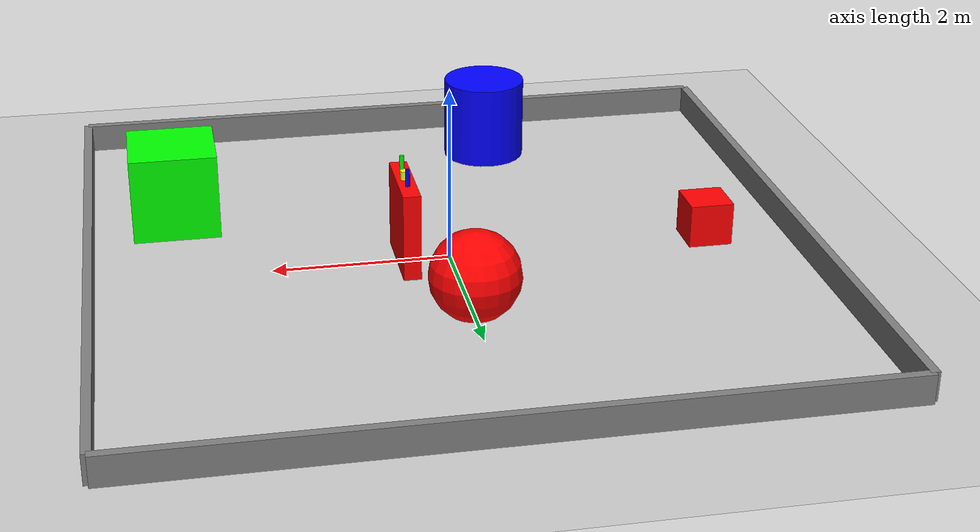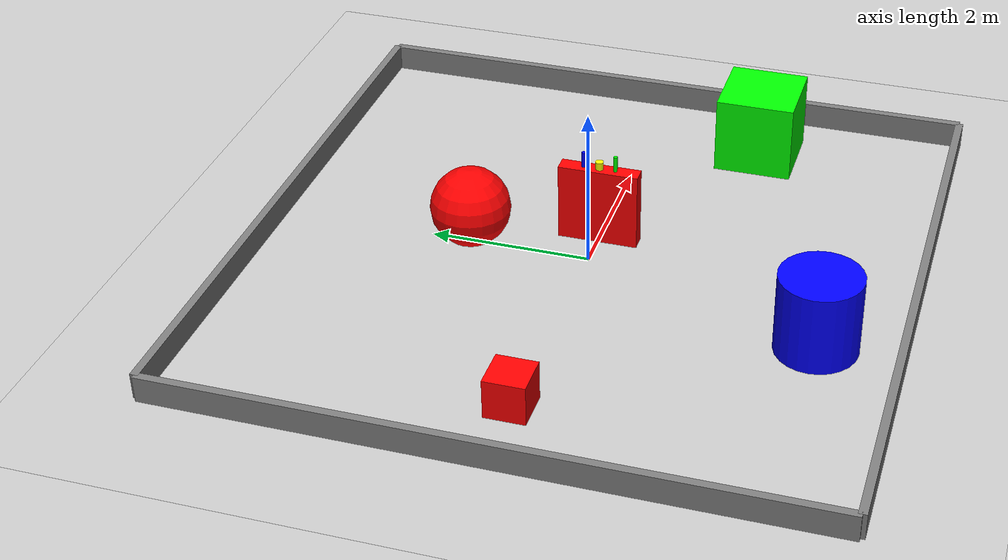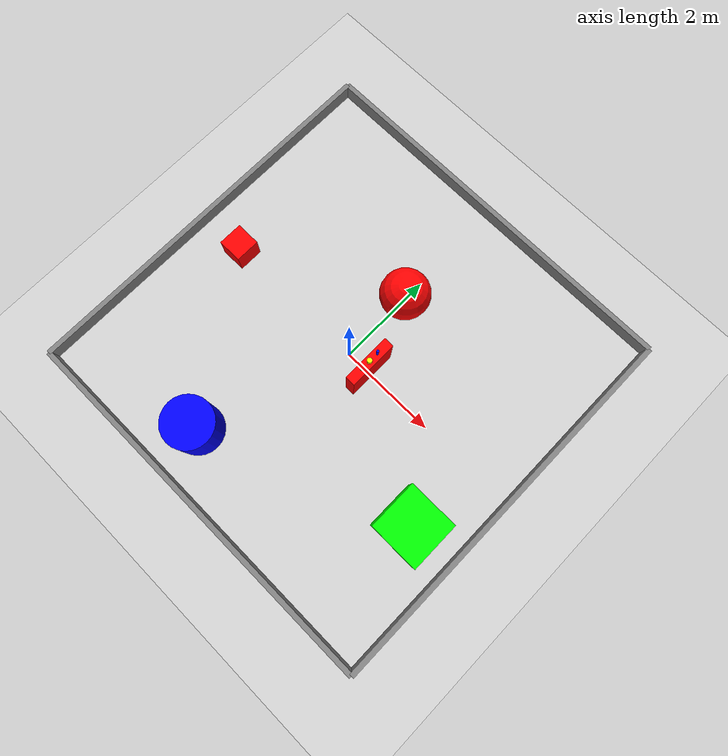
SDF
<?xml version="1.0" ?>
<sdf version="1.8">
  <world name="humanoid_workspace">
    <!-- Physics settings -->
    <physics name="1ms" type="ignored">
      <max_step_size>0.002</max_step_size>
      <real_time_factor>1.0</real_time_factor>
    </physics>

    <plugin
      filename="gz-sim-physics-system"
      name="gz::sim::systems::Physics">
    </plugin>
    <plugin
      filename="gz-sim-user-commands-system"
      name="gz::sim::systems::UserCommands">
    </plugin>
    <plugin
      filename="gz-sim-scene-broadcaster-system"
      name="gz::sim::systems::SceneBroadcaster">
    </plugin>
    <plugin
      filename="gz-sim-sensors-system"
      name="gz::sim::systems::Sensors">
      <render_engine>ogre2</render_engine>
    </plugin>

    <!-- Lighting -->
    <light type="directional" name="sun">
      <cast_shadows>true</cast_shadows>
      <pose>0 0 10 0 0 0</pose>
      <diffuse>0.8 0.8 0.8 1</diffuse>
      <specular>0.2 0.2 0.2 1</specular>
      <attenuation>
        <range>1000</range>
        <constant>0.9</constant>
        <linear>0.01</linear>
        <quadratic>0.001</quadratic>
      </attenuation>
      <direction>-0.5 0.1 -0.9</direction>
    </light>

    <!-- Ground plane -->
    <model name="ground_plane">
      <static>true</static>
      <link name="link">
        <collision name="collision">
          <geometry>
            <plane>
              <normal>0 0 1</normal>
              <size>100 100</size>
            </plane>
          </geometry>
        </collision>
        <visual name="visual">
          <geometry>
            <plane>
              <normal>0 0 1</normal>
              <size>100 100</size>
            </plane>
          </geometry>
          <material>
            <ambient>0.8 0.8 0.8 1</ambient>
            <diffuse>0.8 0.8 0.8 1</diffuse>
            <specular>0.8 0.8 0.8 1</specular>
          </material>
        </visual>
      </link>
    </model>

    <!-- A red ball -->
    <model name="sphere">
      <pose>0 1.5 0.5 0 0 0</pose>
      <link name="link">
        <collision name="collision">
          <geometry>
            <sphere>
              <radius>0.5</radius>
            </sphere>
          </geometry>
        </collision>
        <visual name="visual">
          <geometry>
            <sphere>
              <radius>0.5</radius>
            </sphere>
          </geometry>
          <material>
            <ambient>1 0 0 1</ambient>
            <diffuse>1 0 0 1</diffuse>
            <specular>0.5 0.5 0.5 1</specular>
          </material>
        </visual>
      </link>
    </model>

    <!-- A green cube -->
    <model name="cube_green">
      <pose>3.0 -1.5 0.5 0 0 0</pose>
      <link name="link">
        <collision name="collision">
          <geometry>
            <box>
              <size>1 1 1</size>
            </box>
          </geometry>
        </collision>
        <visual name="visual">
          <geometry>
            <box>
              <size>1 1 1</size>
            </box>
          </geometry>
          <material>
            <ambient>0 1 0 1</ambient>
            <diffuse>0 1 0 1</diffuse>
            <specular>0.5 0.5 0.5 1</specular>
          </material>
        </visual>
      </link>
    </model>

    <!-- A blue cylinder -->
    <model name="cylinder">
      <pose>-1.0 -3.0 0.5 0 0 0</pose>
      <link name="link">
        <collision name="collision">
          <geometry>
            <cylinder>
              <radius>0.5</radius>
              <length>1.0</length>
            </cylinder>
          </geometry>
        </collision>
        <visual name="visual">
          <geometry>
            <cylinder>
              <radius>0.5</radius>
              <length>1.0</length>
            </cylinder>
          </geometry>
          <material>
            <ambient>0 0 1 1</ambient>
            <diffuse>0 0 1 1</diffuse>
            <specular>0.5 0.5 0.5 1</specular>
          </material>
        </visual>
      </link>
    </model>

    <!-- A red small cube -->
    <model name="cube_small_red">
      <pose>-3.0 0.0 0.25 0 0 0</pose>
      <link name="link">
        <collision name="collision">
          <geometry>
            <box>
              <size>0.5 0.5 0.5</size>
            </box>
          </geometry>
        </collision>
        <visual name="visual">
          <geometry>
            <box>
              <size>0.5 0.5 0.5</size>
            </box>
          </geometry>
          <material>
            <ambient>1 0 0 1</ambient>
            <diffuse>1 0 0 1</diffuse>
            <specular>0.5 0.5 0.5 1</specular>
          </material>
        </visual>
      </link>
    </model>

    <!-- Walls -->
    <model name='grey_wall_0'>
      <static>true</static>
      <pose>0 4 0 0 0 0</pose>
      <link name='link'>
        <pose>0 0 0.165 0 0 0</pose>
        <collision name='collision'>
          <geometry>
            <box>
              <size>8 0.1 0.33</size>
            </box>
          </geometry>
        </collision>
        <visual name='visual'>
          <geometry>
            <box>
              <size>8 0.1 0.33</size>
            </box>
          </geometry>
          <material>
            <ambient>0.5 0.5 0.5 1</ambient>
            <diffuse>0.5 0.5 0.5 1</diffuse>
            <specular>0.1 0.1 0.1 1</specular>
          </material>
        </visual>
      </link>
    </model>

    <model name='grey_wall_1'>
      <static>true</static>
      <pose>0 -4 0 0 0 0</pose>
      <link name='link'>
        <pose>0 0 0.165 0 0 0</pose>
        <collision name='collision'>
          <geometry>
            <box>
              <size>8 0.1 0.33</size>
            </box>
          </geometry>
        </collision>
        <visual name='visual'>
          <geometry>
            <box>
              <size>8 0.1 0.33</size>
            </box>
          </geometry>
          <material>
            <ambient>0.5 0.5 0.5 1</ambient>
            <diffuse>0.5 0.5 0.5 1</diffuse>
            <specular>0.1 0.1 0.1 1</specular>
          </material>
        </visual>
      </link>
    </model>

    <model name='grey_wall_2'>
      <static>true</static>
      <pose>4 0 0 0 0 1.57102</pose>
      <link name='link'>
        <pose>0 0 0.165 0 0 0</pose>
        <collision name='collision'>
          <geometry>
            <box>
              <size>8 0.1 0.33</size>
            </box>
          </geometry>
        </collision>
        <visual name='visual'>
          <geometry>
            <box>
              <size>8 0.1 0.33</size>
            </box>
          </geometry>
          <material>
            <ambient>0.5 0.5 0.5 1</ambient>
            <diffuse>0.5 0.5 0.5 1</diffuse>
            <specular>0.1 0.1 0.1 1</specular>
          </material>
        </visual>
      </link>
    </model>

    <model name='grey_wall_3'>
      <static>true</static>
      <pose>-4 0 0 0 0 1.57102</pose>
      <link name='link'>
        <pose>0 0 0.165 0 0 0</pose>
        <collision name='collision'>
          <geometry>
            <box>
              <size>8 0.1 0.33</size>
            </box>
          </geometry>
        </collision>
        <visual name='visual'>
          <geometry>
            <box>
              <size>8 0.1 0.33</size>
            </box>
          </geometry>
          <material>
            <ambient>0.5 0.5 0.5 1</ambient>
            <diffuse>0.5 0.5 0.5 1</diffuse>
            <specular>0.1 0.1 0.1 1</specular>
          </material>
        </visual>
      </link>
    </model>

    <!-- Table -->
    <model name="table">
      <static>true</static>
      <pose>0.5 0.0 0.5 0 0 0</pose>
      <link name="link">
        <inertial>
          <mass>10</mass>
          <inertia>
            <ixx>0.1</ixx>
            <ixy>0.0</ixy>
            <ixz>0.0</ixz>
            <iyy>0.015</iyy>
            <iyz>0.0</iyz>
            <izz>0.1</izz>
          </inertia>
        </inertial>
        <collision name="collision">
          <geometry>
            <box>
              <size>0.2 1 1</size>
            </box>
          </geometry>
          <surface>
            <friction>
              <ode>
                <mu>0.4</mu>
                <mu2>0.4</mu2>
              </ode>
            </friction>
          </surface>
        </collision>
        <visual name="visual">
          <geometry>
            <box>
              <size>0.2 1 1</size>
            </box>
          </geometry>
          <material>
            <ambient>1 0 0 1</ambient>
            <diffuse>1 0 0 1</diffuse>
            <specular>0.5 0.5 0.5 1</specular>
          </material>
        </visual>
      </link>
    </model>

    <!-- Grasp target 1 (yellow cylinder) -->
    <model name="target_cylinder_1">
      <pose>0.5 0 1.05 0 0 0</pose>
      <link name="link">
        <inertial>
          <mass>1</mass>
          <inertia>
            <ixx>0.1</ixx>
            <ixy>0.0</ixy>
            <ixz>0.0</ixz>
            <iyy>0.1</iyy>
            <iyz>0.0</iyz>
            <izz>0.1</izz>
          </inertia>
        </inertial>
        <collision name="collision">
          <geometry>
            <cylinder>
              <radius>0.05</radius>
              <length>0.1</length>
            </cylinder>
          </geometry>
          <surface>
            <friction>
              <ode>
                <mu>1</mu>
                <mu2>1</mu2>
              </ode>
            </friction>
          </surface>
        </collision>
        <visual name="visual">
          <geometry>
            <cylinder>
              <radius>0.05</radius>
              <length>0.1</length>
            </cylinder>
          </geometry>
          <material>
            <ambient>1 1 0 1</ambient>
            <diffuse>1 1 0 1</diffuse>
            <specular>0.5 0.5 0.5 1</specular>
          </material>
        </visual>
      </link>
    </model>

    <!-- Grasp target 2 (blue cylinder) -->
    <model name="target_cylinder_2">
      <pose>0.5 0.2 1.1 0 0 0</pose>
      <link name="link">
        <inertial>
          <mass>0.1</mass>
          <inertia>
            <ixx>0.01</ixx>
            <ixy>0.0</ixy>
            <ixz>0.0</ixz>
            <iyy>0.01</iyy>
            <iyz>0.0</iyz>
            <izz>0.01</izz>
          </inertia>
        </inertial>
        <collision name="collision">
          <geometry>
            <cylinder>
              <radius>0.025</radius>
              <length>0.2</length>
            </cylinder>
          </geometry>
          <surface>
            <friction>
              <ode>
                <mu>1</mu>
                <mu2>1</mu2>
              </ode>
            </friction>
          </surface>
        </collision>
        <visual name="visual">
          <geometry>
            <cylinder>
              <radius>0.025</radius>
              <length>0.2</length>
            </cylinder>
          </geometry>
          <material>
            <ambient>0 0 1 1</ambient>
            <diffuse>0 0 1 1</diffuse>
            <specular>0.5 0.5 0.5 1</specular>
          </material>
        </visual>
      </link>
    </model>

    <!-- Grasp target 3 (green cylinder) -->
    <model name="target_cylinder_3">
      <pose>0.5 -0.2 1.1 0 0 0</pose>
      <link name="link">
        <inertial>
          <mass>0.1</mass>
          <inertia>
            <ixx>0.01</ixx>
            <ixy>0.0</ixy>
            <ixz>0.0</ixz>
            <iyy>0.01</iyy>
            <iyz>0.0</iyz>
            <izz>0.01</izz>
          </inertia>
        </inertial>
        <collision name="collision">
          <geometry>
            <cylinder>
              <radius>0.025</radius>
              <length>0.2</length>
            </cylinder>
          </geometry>
          <surface>
            <friction>
              <ode>
                <mu>1</mu>
                <mu2>1</mu2>
              </ode>
            </friction>
          </surface>
        </collision>
        <visual name="visual">
          <geometry>
            <cylinder>
              <radius>0.025</radius>
              <length>0.2</length>
            </cylinder>
          </geometry>
          <material>
            <ambient>0 1 0 1</ambient>
            <diffuse>0 1 0 1</diffuse>
            <specular>0.5 0.5 0.5 1</specular>
          </material>
        </visual>
      </link>
    </model>

    <!-- Custom STL model -->

  </world>
</sdf>
